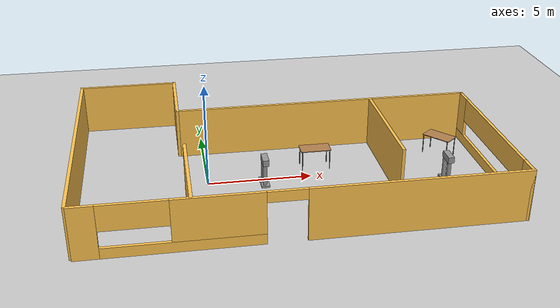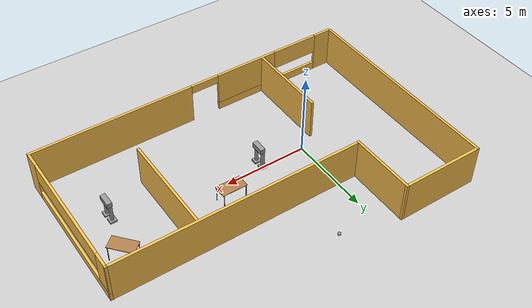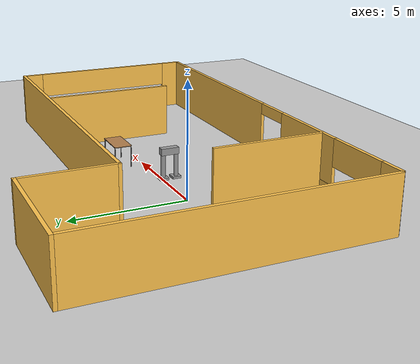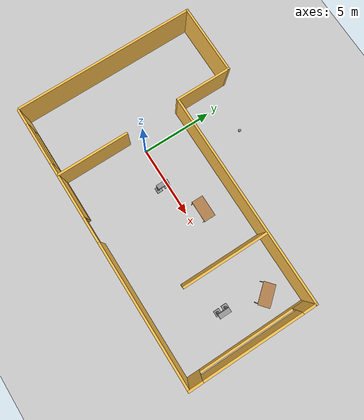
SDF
<sdf version="1.6">
 <world name="default">
  <plugin name="welcome_message" filename="libwelcome_message.so"/>
  <light name="sun" type="directional">
   <pose>0 0 10 0 -0 0</pose>
   <diffuse>0.8 0.8 0.8 1</diffuse>
   <specular>0.2 0.2 0.2 1</specular>
   <attenuation>
    <range>1000</range>
    <constant>0.9</constant>
    <linear>0.01</linear>
    <quadratic>0.001</quadratic>
   </attenuation>
   <direction>-0.5 0.1 -0.9</direction>
  </light>
  <model name="ground_plane">
   <static>1</static>
   <link name="link">
    <collision name="collision">
     <geometry><plane><normal>0 0 1</normal><size>100 100</size></plane></geometry>
     <surface>
      <contact><collide_bitmask>65535</collide_bitmask></contact>
      <friction><ode><mu>100</mu><mu2>50</mu2></ode></friction>
     </surface>
    </collision>
    <visual name="visual">
     <cast_shadows>0</cast_shadows>
     <geometry><plane><normal>0 0 1</normal><size>100 100</size></plane></geometry>
     <material>
      <script><uri>file://media/materials/scripts/gazebo.material</uri><name>Gazebo/Grey</name></script>
     </material>
    </visual>
   </link>
  </model>
  <gravity>0 0 -9.81</gravity>
  <magnetic_field>6e-06 2.3e-05 -4.2e-05</magnetic_field>
  <atmosphere type="adiabatic"/>
  <physics name="default_physics" default="0" type="ode">
   <max_step_size>0.001</max_step_size>
   <real_time_factor>1</real_time_factor>
   <real_time_update_rate>1000</real_time_update_rate>
  </physics>
  <scene><ambient>0.4 0.4 0.4 1</ambient><background>0.7 0.7 0.7 1</background><shadows>1</shadows></scene>
  <audio><device>default</device></audio>
  <spherical_coordinates>
   <surface_model>EARTH_WGS84</surface_model>
   <latitude_deg>0</latitude_deg>
   <longitude_deg>0</longitude_deg>
   <elevation>0</elevation>
   <heading_deg>0</heading_deg>
  </spherical_coordinates>
  <model name="table">
   <static>1</static>
   <link name="link">
    <collision name="surface">
     <pose>0 0 1 0 -0 0</pose>
     <geometry><box><size>1.5 0.8 0.03</size></box></geometry>
     <surface><friction><ode><mu>0.6</mu><mu2>0.6</mu2></ode></friction></surface>
    </collision>
    <visual name="visual1">
     <pose>0 0 1 0 -0 0</pose>
     <geometry><box><size>1.5 0.8 0.03</size></box></geometry>
     <material>
      <script><uri>file://media/materials/scripts/gazebo.material</uri><name>Gazebo/Wood</name></script>
     </material>
    </visual>
    <collision name="front_left_leg">
     <pose>0.68 0.38 0.5 0 -0 0</pose>
     <geometry><cylinder><radius>0.02</radius><length>1</length></cylinder></geometry>
    </collision>
    <visual name="front_left_leg">
     <pose>0.68 0.38 0.5 0 -0 0</pose>
     <geometry><cylinder><radius>0.02</radius><length>1</length></cylinder></geometry>
     <material>
      <script><uri>file://media/materials/scripts/gazebo.material</uri><name>Gazebo/Grey</name></script>
     </material>
    </visual>
    <collision name="front_right_leg">
     <pose>0.68 -0.38 0.5 0 -0 0</pose>
     <geometry><cylinder><radius>0.02</radius><length>1</length></cylinder></geometry>
    </collision>
    <visual name="front_right_leg">
     <pose>0.68 -0.38 0.5 0 -0 0</pose>
     <geometry><cylinder><radius>0.02</radius><length>1</length></cylinder></geometry>
     <material>
      <script><uri>file://media/materials/scripts/gazebo.material</uri><name>Gazebo/Grey</name></script>
     </material>
    </visual>
    <collision name="back_right_leg">
     <pose>-0.68 -0.38 0.5 0 -0 0</pose>
     <geometry><cylinder><radius>0.02</radius><length>1</length></cylinder></geometry>
    </collision>
    <visual name="back_right_leg">
     <pose>-0.68 -0.38 0.5 0 -0 0</pose>
     <geometry><cylinder><radius>0.02</radius><length>1</length></cylinder></geometry>
     <material>
      <script><uri>file://media/materials/scripts/gazebo.material</uri><name>Gazebo/Grey</name></script>
     </material>
    </visual>
    <collision name="back_left_leg">
     <pose>-0.68 0.38 0.5 0 -0 0</pose>
     <geometry><cylinder><radius>0.02</radius><length>1</length></cylinder></geometry>
    </collision>
    <visual name="back_left_leg">
     <pose>-0.68 0.38 0.5 0 -0 0</pose>
     <geometry><cylinder><radius>0.02</radius><length>1</length></cylinder></geometry>
     <material>
      <script><uri>file://media/materials/scripts/gazebo.material</uri><name>Gazebo/Grey</name></script>
     </material>
    </visual>
   </link>
   <pose>5.38497 1.00754 0 0 -0 0</pose>
  </model>
  <model name="table_0">
   <static>1</static>
   <link name="link">
    <collision name="surface">
     <pose>0 0 1 0 -0 0</pose>
     <geometry><box><size>1.5 0.8 0.03</size></box></geometry>
     <surface><friction><ode><mu>0.6</mu><mu2>0.6</mu2></ode></friction></surface>
    </collision>
    <visual name="visual1">
     <pose>0 0 1 0 -0 0</pose>
     <geometry><box><size>1.5 0.8 0.03</size></box></geometry>
     <material>
      <script><uri>file://media/materials/scripts/gazebo.material</uri><name>Gazebo/Wood</name></script>
     </material>
    </visual>
    <collision name="front_left_leg">
     <pose>0.68 0.38 0.5 0 -0 0</pose>
     <geometry><cylinder><radius>0.02</radius><length>1</length></cylinder></geometry>
    </collision>
    <visual name="front_left_leg">
     <pose>0.68 0.38 0.5 0 -0 0</pose>
     <geometry><cylinder><radius>0.02</radius><length>1</length></cylinder></geometry>
     <material>
      <script><uri>file://media/materials/scripts/gazebo.material</uri><name>Gazebo/Grey</name></script>
     </material>
    </visual>
    <collision name="front_right_leg">
     <pose>0.68 -0.38 0.5 0 -0 0</pose>
     <geometry><cylinder><radius>0.02</radius><length>1</length></cylinder></geometry>
    </collision>
    <visual name="front_right_leg">
     <pose>0.68 -0.38 0.5 0 -0 0</pose>
     <geometry><cylinder><radius>0.02</radius><length>1</length></cylinder></geometry>
     <material>
      <script><uri>file://media/materials/scripts/gazebo.material</uri><name>Gazebo/Grey</name></script>
     </material>
    </visual>
    <collision name="back_right_leg">
     <pose>-0.68 -0.38 0.5 0 -0 0</pose>
     <geometry><cylinder><radius>0.02</radius><length>1</length></cylinder></geometry>
    </collision>
    <visual name="back_right_leg">
     <pose>-0.68 -0.38 0.5 0 -0 0</pose>
     <geometry><cylinder><radius>0.02</radius><length>1</length></cylinder></geometry>
     <material>
      <script><uri>file://media/materials/scripts/gazebo.material</uri><name>Gazebo/Grey</name></script>
     </material>
    </visual>
    <collision name="back_left_leg">
     <pose>-0.68 0.38 0.5 0 -0 0</pose>
     <geometry><cylinder><radius>0.02</radius><length>1</length></cylinder></geometry>
    </collision>
    <visual name="back_left_leg">
     <pose>-0.68 0.38 0.5 0 -0 0</pose>
     <geometry><cylinder><radius>0.02</radius><length>1</length></cylinder></geometry>
     <material>
      <script><uri>file://media/materials/scripts/gazebo.material</uri><name>Gazebo/Grey</name></script>
     </material>
    </visual>
   </link>
   <pose>11.9412 1.36034 0 0 -0 2.27837</pose>
  </model>
  <model name="Building">
   <pose>3.79999 0.75368 0 0 -0 0</pose>
   <link name="Wall_0">
    <pose>0.05 -6.35 0 0 -0 0</pose>
    <visual name="Wall_0_Visual_0">
     <pose>-9.30666 0 1.25 0 -0 0</pose>
     <geometry><box><size>1.13668 0.15 2.5</size></box></geometry>
     <material>
      <script><uri>file://media/materials/scripts/gazebo.material</uri><name>Gazebo/Grey</name></script>
      <ambient>1 0.764706 0.305882 1</ambient>
     </material>
     <meta><layer>0</layer></meta>
    </visual>
    <collision name="Wall_0_Collision_0">
     <geometry><box><size>1.13668 0.15 2.5</size></box></geometry>
     <pose>-9.30666 0 1.25 0 -0 0</pose>
    </collision>
    <visual name="Wall_0_Visual_1">
     <pose>4.90959 0 1.25 0 -0 0</pose>
     <geometry><box><size>9.93081 0.15 2.5</size></box></geometry>
     <material>
      <script><uri>file://media/materials/scripts/gazebo.material</uri><name>Gazebo/Grey</name></script>
      <ambient>1 0.764706 0.305882 1</ambient>
     </material>
     <meta><layer>0</layer></meta>
    </visual>
    <collision name="Wall_0_Collision_1">
     <geometry><box><size>9.93081 0.15 2.5</size></box></geometry>
     <pose>4.90959 0 1.25 0 -0 0</pose>
    </collision>
    <visual name="Wall_0_Visual_2">
     <pose>-5.27291 0 0.25 0 -0 0</pose>
     <geometry><box><size>6.93082 0.15 0.5</size></box></geometry>
     <material>
      <script><uri>file://media/materials/scripts/gazebo.material</uri><name>Gazebo/Grey</name></script>
      <ambient>1 0.764706 0.305882 1</ambient>
     </material>
     <meta><layer>0</layer></meta>
    </visual>
    <collision name="Wall_0_Collision_2">
     <geometry><box><size>6.93082 0.15 0.5</size></box></geometry>
     <pose>-5.27291 0 0.25 0 -0 0</pose>
    </collision>
    <visual name="Wall_0_Visual_3">
     <pose>-3.79309 0 1.5 0 -0 0</pose>
     <geometry><box><size>3.97117 0.15 2</size></box></geometry>
     <material>
      <script><uri>file://media/materials/scripts/gazebo.material</uri><name>Gazebo/Grey</name></script>
      <ambient>1 0.764706 0.305882 1</ambient>
     </material>
     <meta><layer>0</layer></meta>
    </visual>
    <collision name="Wall_0_Collision_3">
     <geometry><box><size>3.97117 0.15 2</size></box></geometry>
     <pose>-3.79309 0 1.5 0 -0 0</pose>
    </collision>
    <visual name="Wall_0_Visual_4">
     <pose>-7.2585 0 1.9 0 -0 0</pose>
     <geometry><box><size>2.95964 0.15 1.2</size></box></geometry>
     <material>
      <script><uri>file://media/materials/scripts/gazebo.material</uri><name>Gazebo/Grey</name></script>
      <ambient>1 0.764706 0.305882 1</ambient>
     </material>
     <meta><layer>0</layer></meta>
    </visual>
    <collision name="Wall_0_Collision_4">
     <geometry><box><size>2.95964 0.15 1.2</size></box></geometry>
     <pose>-7.2585 0 1.9 0 -0 0</pose>
    </collision>
    <visual name="Wall_0_Visual_5">
     <pose>-0.931658 0 2.25 0 -0 0</pose>
     <geometry><box><size>1.75169 0.15 0.5</size></box></geometry>
     <material>
      <script><uri>file://media/materials/scripts/gazebo.material</uri><name>Gazebo/Grey</name></script>
      <ambient>1 0.764706 0.305882 1</ambient>
     </material>
     <meta><layer>0</layer></meta>
    </visual>
    <collision name="Wall_0_Collision_5">
     <geometry><box><size>1.75169 0.15 0.5</size></box></geometry>
     <pose>-0.931658 0 2.25 0 -0 0</pose>
    </collision>
   </link>
   <link name="Wall_1">
    <pose>9.85 -1.925 0 0 -0 1.5708</pose>
    <visual name="Wall_1_Visual_0">
     <pose>-3.98341 0 1.25 0 -0 0</pose>
     <geometry><box><size>1.03318 0.15 2.5</size></box></geometry>
     <material>
      <script><uri>file://media/materials/scripts/gazebo.material</uri><name>Gazebo/Grey</name></script>
      <ambient>1 0.764706 0.305882 1</ambient>
     </material>
     <meta><layer>0</layer></meta>
    </visual>
    <collision name="Wall_1_Collision_0">
     <geometry><box><size>1.03318 0.15 2.5</size></box></geometry>
     <pose>-3.98341 0 1.25 0 -0 0</pose>
    </collision>
    <visual name="Wall_1_Visual_1">
     <pose>0.516591 0 0.25 0 -0 0</pose>
     <geometry><box><size>7.96682 0.15 0.5</size></box></geometry>
     <material>
      <script><uri>file://media/materials/scripts/gazebo.material</uri><name>Gazebo/Grey</name></script>
      <ambient>1 0.764706 0.305882 1</ambient>
     </material>
     <meta><layer>0</layer></meta>
    </visual>
    <collision name="Wall_1_Collision_1">
     <geometry><box><size>7.96682 0.15 0.5</size></box></geometry>
     <pose>0.516591 0 0.25 0 -0 0</pose>
    </collision>
    <visual name="Wall_1_Visual_2">
     <pose>3.98876 0 1.5 0 -0 0</pose>
     <geometry><box><size>1.02248 0.15 2</size></box></geometry>
     <material>
      <script><uri>file://media/materials/scripts/gazebo.material</uri><name>Gazebo/Grey</name></script>
      <ambient>1 0.764706 0.305882 1</ambient>
     </material>
     <meta><layer>0</layer></meta>
    </visual>
    <collision name="Wall_1_Collision_2">
     <geometry><box><size>1.02248 0.15 2</size></box></geometry>
     <pose>3.98876 0 1.5 0 -0 0</pose>
    </collision>
    <visual name="Wall_1_Visual_3">
     <pose>0.00535 0 1.9 0 -0 0</pose>
     <geometry><box><size>6.94433 0.15 1.2</size></box></geometry>
     <material>
      <script><uri>file://media/materials/scripts/gazebo.material</uri><name>Gazebo/Grey</name></script>
      <ambient>1 0.764706 0.305882 1</ambient>
     </material>
     <meta><layer>0</layer></meta>
    </visual>
    <collision name="Wall_1_Collision_3">
     <geometry><box><size>6.94433 0.15 1.2</size></box></geometry>
     <pose>0.00535 0 1.9 0 -0 0</pose>
    </collision>
   </link>
   <link name="Wall_2">
    <collision name="Wall_2_Collision">
     <geometry><box><size>15 0.15 2.5</size></box></geometry>
     <pose>0 0 1.25 0 -0 0</pose>
    </collision>
    <visual name="Wall_2_Visual">
     <pose>0 0 1.25 0 -0 0</pose>
     <geometry><box><size>15 0.15 2.5</size></box></geometry>
     <material>
      <script><uri>file://media/materials/scripts/gazebo.material</uri><name>Gazebo/Grey</name></script>
      <ambient>1 0.764706 0.305882 1</ambient>
     </material>
     <meta><layer>0</layer></meta>
    </visual>
    <pose>2.425 2.5 0 0 -0 3.14159</pose>
   </link>
   <link name="Wall_3">
    <collision name="Wall_3_Collision">
     <geometry><box><size>4 0.15 2.5</size></box></geometry>
     <pose>0 0 1.25 0 -0 0</pose>
    </collision>
    <visual name="Wall_3_Visual">
     <pose>0 0 1.25 0 -0 0</pose>
     <geometry><box><size>4 0.15 2.5</size></box></geometry>
     <material>
      <script><uri>file://media/materials/scripts/gazebo.material</uri><name>Gazebo/Grey</name></script>
      <ambient>1 0.764706 0.305882 1</ambient>
     </material>
     <meta><layer>0</layer></meta>
    </visual>
    <pose>-5 4.425 0 0 -0 1.5708</pose>
   </link>
   <link name="Wall_4">
    <collision name="Wall_4_Collision">
     <geometry><box><size>5 0.15 2.5</size></box></geometry>
     <pose>0 0 1.25 0 -0 0</pose>
    </collision>
    <visual name="Wall_4_Visual">
     <pose>0 0 1.25 0 -0 0</pose>
     <geometry><box><size>5 0.15 2.5</size></box></geometry>
     <material>
      <script><uri>file://media/materials/scripts/gazebo.material</uri><name>Gazebo/Grey</name></script>
      <ambient>1 0.764706 0.305882 1</ambient>
     </material>
     <meta><layer>0</layer></meta>
    </visual>
    <pose>-7.425 6.35 0 0 -0 3.14159</pose>
   </link>
   <link name="Wall_5">
    <collision name="Wall_5_Collision">
     <geometry><box><size>12.75 0.15 2.5</size></box></geometry>
     <pose>0 0 1.25 0 -0 0</pose>
    </collision>
    <visual name="Wall_5_Visual">
     <pose>0 0 1.25 0 -0 0</pose>
     <geometry><box><size>12.75 0.15 2.5</size></box></geometry>
     <material>
      <script><uri>file://media/materials/scripts/gazebo.material</uri><name>Gazebo/Grey</name></script>
      <ambient>1 0.764706 0.305882 1</ambient>
     </material>
     <meta><layer>0</layer></meta>
    </visual>
    <pose>-9.85 0.05 0 0 -0 -1.5708</pose>
   </link>
   <link name="Wall_7">
    <collision name="Wall_7_Collision">
     <geometry><box><size>5 0.15 2.5</size></box></geometry>
     <pose>0 0 1.25 0 -0 0</pose>
    </collision>
    <visual name="Wall_7_Visual">
     <pose>0 0 1.25 0 -0 0</pose>
     <geometry><box><size>5 0.15 2.5</size></box></geometry>
     <material>
      <script><uri>file://media/materials/scripts/gazebo.material</uri><name>Gazebo/Grey</name></script>
      <ambient>1 0.764706 0.305882 1</ambient>
     </material>
     <meta><layer>0</layer></meta>
    </visual>
    <pose>-4.85114 -3.84435 0 0 -0 1.5708</pose>
   </link>
   <link name="Wall_9">
    <collision name="Wall_9_Collision">
     <geometry><box><size>6 0.15 2.5</size></box></geometry>
     <pose>0 0 1.25 0 -0 0</pose>
    </collision>
    <visual name="Wall_9_Visual">
     <pose>0 0 1.25 0 -0 0</pose>
     <geometry><box><size>6 0.15 2.5</size></box></geometry>
     <material>
      <script><uri>file://media/materials/scripts/gazebo.material</uri><name>Gazebo/Grey</name></script>
      <ambient>1 0.764706 0.305882 1</ambient>
     </material>
     <meta><layer>0</layer></meta>
    </visual>
    <pose>4.91288 -0.555783 0 0 -0 -1.5708</pose>
   </link>
   <static>1</static>
  </model>
  <model name="HumanoidRobot">
   <link name="link_0">
    <inertial>
     <mass>1</mass>
     <inertia>
      <ixx>0.166667</ixx>
      <ixy>0</ixy>
      <ixz>0</ixz>
      <iyy>0.166667</iyy>
      <iyz>0</iyz>
      <izz>0.166667</izz>
     </inertia>
    </inertial>
    <pose>0.036003 -0.003999 0.74 0 -0 0</pose>
    <visual name="visual">
     <geometry><box><size>0.3 0.8 0.3</size></box></geometry>
     <material>
      <lighting>1</lighting>
      <script><uri>file://media/materials/scripts/gazebo.material</uri><name>Gazebo/Grey</name></script>
      <shader type="vertex"><normal_map>__default__</normal_map></shader>
      <ambient>0.3 0.3 0.3 1</ambient>
      <diffuse>0.7 0.7 0.7 1</diffuse>
      <specular>0.01 0.01 0.01 1</specular>
      <emissive>0 0 0 1</emissive>
     </material>
    </visual>
    <collision name="collision">
     <geometry><box><size>0.3 0.8 0.3</size></box></geometry>
     <surface>
      <friction>
       <ode><mu>1</mu><mu2>1</mu2><fdir1>0 0 0</fdir1><slip1>0</slip1><slip2>0</slip2></ode>
       <torsional>
        <coefficient>1</coefficient>
        <patch_radius>0</patch_radius>
        <surface_radius>0</surface_radius>
        <use_patch_radius>1</use_patch_radius>
        <ode><slip>0</slip></ode>
       </torsional>
      </friction>
      <bounce><restitution_coefficient>0</restitution_coefficient><threshold>1e+06</threshold></bounce>
      <contact>
       <collide_without_contact>0</collide_without_contact>
       <collide_without_contact_bitmask>1</collide_without_contact_bitmask>
       <collide_bitmask>1</collide_bitmask>
       <ode>
        <soft_cfm>0</soft_cfm>
        <soft_erp>0.2</soft_erp>
        <kp>1e+13</kp>
        <kd>1</kd>
        <max_vel>0.01</max_vel>
        <min_depth>0</min_depth>
       </ode>
       <bullet>
        <split_impulse>1</split_impulse>
        <split_impulse_penetration_threshold>-0.01</split_impulse_penetration_threshold>
        <soft_cfm>0</soft_cfm>
        <soft_erp>0.2</soft_erp>
        <kp>1e+13</kp>
        <kd>1</kd>
       </bullet>
      </contact>
     </surface>
    </collision>
   </link>
   <link name="link_1_clone">
    <inertial>
     <mass>1</mass>
     <inertia>
      <ixx>0.166667</ixx>
      <ixy>0</ixy>
      <ixz>0</ixz>
      <iyy>0.166667</iyy>
      <iyz>0</iyz>
      <izz>0.166667</izz>
     </inertia>
    </inertial>
    <pose>0.006003 -0.283999 -0.46 0 -0 0</pose>
    <visual name="visual">
     <geometry><box><size>0.4 0.4 0.1</size></box></geometry>
     <material>
      <lighting>1</lighting>
      <script><uri>file://media/materials/scripts/gazebo.material</uri><name>Gazebo/Grey</name></script>
      <shader type="vertex"><normal_map>__default__</normal_map></shader>
      <ambient>0.3 0.3 0.3 1</ambient>
      <diffuse>0.7 0.7 0.7 1</diffuse>
      <specular>0.01 0.01 0.01 1</specular>
      <emissive>0 0 0 1</emissive>
     </material>
    </visual>
    <collision name="collision">
     <geometry><box><size>0.4 0.4 0.1</size></box></geometry>
     <surface>
      <friction>
       <ode><mu>1</mu><mu2>1</mu2><fdir1>0 0 0</fdir1><slip1>0</slip1><slip2>0</slip2></ode>
       <torsional>
        <coefficient>1</coefficient>
        <patch_radius>0</patch_radius>
        <surface_radius>0</surface_radius>
        <use_patch_radius>1</use_patch_radius>
        <ode><slip>0</slip></ode>
       </torsional>
      </friction>
      <bounce><restitution_coefficient>0</restitution_coefficient><threshold>1e+06</threshold></bounce>
      <contact>
       <collide_without_contact>0</collide_without_contact>
       <collide_without_contact_bitmask>1</collide_without_contact_bitmask>
       <collide_bitmask>1</collide_bitmask>
       <ode>
        <soft_cfm>0</soft_cfm>
        <soft_erp>0.2</soft_erp>
        <kp>1e+13</kp>
        <kd>1</kd>
        <max_vel>0.01</max_vel>
        <min_depth>0</min_depth>
       </ode>
       <bullet>
        <split_impulse>1</split_impulse>
        <split_impulse_penetration_threshold>-0.01</split_impulse_penetration_threshold>
        <soft_cfm>0</soft_cfm>
        <soft_erp>0.2</soft_erp>
        <kp>1e+13</kp>
        <kd>1</kd>
       </bullet>
      </contact>
     </surface>
    </collision>
   </link>
   <link name="link_1_clone_clone">
    <inertial>
     <mass>1</mass>
     <inertia>
      <ixx>0.166667</ixx>
      <ixy>0</ixy>
      <ixz>0</ixz>
      <iyy>0.166667</iyy>
      <iyz>0</iyz>
      <izz>0.166667</izz>
     </inertia>
    </inertial>
    <pose>-0.013997 0.296001 -0.46 0 -0 0</pose>
    <visual name="visual">
     <geometry><box><size>0.4 0.4 0.1</size></box></geometry>
     <material>
      <lighting>1</lighting>
      <script><uri>file://media/materials/scripts/gazebo.material</uri><name>Gazebo/Grey</name></script>
      <shader type="vertex"><normal_map>__default__</normal_map></shader>
      <ambient>0.3 0.3 0.3 1</ambient>
      <diffuse>0.7 0.7 0.7 1</diffuse>
      <specular>0.01 0.01 0.01 1</specular>
      <emissive>0 0 0 1</emissive>
     </material>
    </visual>
    <collision name="collision">
     <geometry><box><size>0.4 0.4 0.1</size></box></geometry>
     <surface>
      <friction>
       <ode><mu>1</mu><mu2>1</mu2><fdir1>0 0 0</fdir1><slip1>0</slip1><slip2>0</slip2></ode>
       <torsional>
        <coefficient>1</coefficient>
        <patch_radius>0</patch_radius>
        <surface_radius>0</surface_radius>
        <use_patch_radius>1</use_patch_radius>
        <ode><slip>0</slip></ode>
       </torsional>
      </friction>
      <bounce><restitution_coefficient>0</restitution_coefficient><threshold>1e+06</threshold></bounce>
      <contact>
       <collide_without_contact>0</collide_without_contact>
       <collide_without_contact_bitmask>1</collide_without_contact_bitmask>
       <collide_bitmask>1</collide_bitmask>
       <ode>
        <soft_cfm>0</soft_cfm>
        <soft_erp>0.2</soft_erp>
        <kp>1e+13</kp>
        <kd>1</kd>
        <max_vel>0.01</max_vel>
        <min_depth>0</min_depth>
       </ode>
       <bullet>
        <split_impulse>1</split_impulse>
        <split_impulse_penetration_threshold>-0.01</split_impulse_penetration_threshold>
        <soft_cfm>0</soft_cfm>
        <soft_erp>0.2</soft_erp>
        <kp>1e+13</kp>
        <kd>1</kd>
       </bullet>
      </contact>
     </surface>
    </collision>
   </link>
   <link name="link_2">
    <inertial>
     <mass>1</mass>
     <inertia><ixx>0.145833</ixx><ixy>0</ixy><ixz>0</ixz><iyy>0.145833</iyy><iyz>0</iyz><izz>0.125</izz></inertia>
    </inertial>
    <pose>-0.013997 -0.303999 0.09 0 -0 0</pose>
    <visual name="visual">
     <geometry><cylinder><radius>0.1</radius><length>1</length></cylinder></geometry>
     <material>
      <lighting>1</lighting>
      <script><uri>file://media/materials/scripts/gazebo.material</uri><name>Gazebo/Grey</name></script>
      <shader type="vertex"><normal_map>__default__</normal_map></shader>
      <ambient>0.3 0.3 0.3 1</ambient>
      <diffuse>0.7 0.7 0.7 1</diffuse>
      <specular>0.01 0.01 0.01 1</specular>
      <emissive>0 0 0 1</emissive>
     </material>
    </visual>
    <collision name="collision">
     <geometry><cylinder><radius>0.1</radius><length>1</length></cylinder></geometry>
     <surface>
      <friction>
       <ode><mu>1</mu><mu2>1</mu2><fdir1>0 0 0</fdir1><slip1>0</slip1><slip2>0</slip2></ode>
       <torsional>
        <coefficient>1</coefficient>
        <patch_radius>0</patch_radius>
        <surface_radius>0</surface_radius>
        <use_patch_radius>1</use_patch_radius>
        <ode><slip>0</slip></ode>
       </torsional>
      </friction>
      <bounce><restitution_coefficient>0</restitution_coefficient><threshold>1e+06</threshold></bounce>
      <contact>
       <collide_without_contact>0</collide_without_contact>
       <collide_without_contact_bitmask>1</collide_without_contact_bitmask>
       <collide_bitmask>1</collide_bitmask>
       <ode>
        <soft_cfm>0</soft_cfm>
        <soft_erp>0.2</soft_erp>
        <kp>1e+13</kp>
        <kd>1</kd>
        <max_vel>0.01</max_vel>
        <min_depth>0</min_depth>
       </ode>
       <bullet>
        <split_impulse>1</split_impulse>
        <split_impulse_penetration_threshold>-0.01</split_impulse_penetration_threshold>
        <soft_cfm>0</soft_cfm>
        <soft_erp>0.2</soft_erp>
        <kp>1e+13</kp>
        <kd>1</kd>
       </bullet>
      </contact>
     </surface>
    </collision>
   </link>
   <link name="link_2_clone">
    <inertial>
     <mass>1</mass>
     <inertia><ixx>0.145833</ixx><ixy>0</ixy><ixz>0</ixz><iyy>0.145833</iyy><iyz>0</iyz><izz>0.125</izz></inertia>
    </inertial>
    <pose>-0.013997 0.296001 0.09 0 -0 0</pose>
    <visual name="visual">
     <geometry><cylinder><radius>0.1</radius><length>1</length></cylinder></geometry>
     <material>
      <lighting>1</lighting>
      <script><uri>file://media/materials/scripts/gazebo.material</uri><name>Gazebo/Grey</name></script>
      <shader type="vertex"><normal_map>__default__</normal_map></shader>
      <ambient>0.3 0.3 0.3 1</ambient>
      <diffuse>0.7 0.7 0.7 1</diffuse>
      <specular>0.01 0.01 0.01 1</specular>
      <emissive>0 0 0 1</emissive>
     </material>
    </visual>
    <collision name="collision">
     <geometry><cylinder><radius>0.1</radius><length>1</length></cylinder></geometry>
     <surface>
      <friction>
       <ode><mu>1</mu><mu2>1</mu2><fdir1>0 0 0</fdir1><slip1>0</slip1><slip2>0</slip2></ode>
       <torsional>
        <coefficient>1</coefficient>
        <patch_radius>0</patch_radius>
        <surface_radius>0</surface_radius>
        <use_patch_radius>1</use_patch_radius>
        <ode><slip>0</slip></ode>
       </torsional>
      </friction>
      <bounce><restitution_coefficient>0</restitution_coefficient><threshold>1e+06</threshold></bounce>
      <contact>
       <collide_without_contact>0</collide_without_contact>
       <collide_without_contact_bitmask>1</collide_without_contact_bitmask>
       <collide_bitmask>1</collide_bitmask>
       <ode>
        <soft_cfm>0</soft_cfm>
        <soft_erp>0.2</soft_erp>
        <kp>1e+13</kp>
        <kd>1</kd>
        <max_vel>0.01</max_vel>
        <min_depth>0</min_depth>
       </ode>
       <bullet>
        <split_impulse>1</split_impulse>
        <split_impulse_penetration_threshold>-0.01</split_impulse_penetration_threshold>
        <soft_cfm>0</soft_cfm>
        <soft_erp>0.2</soft_erp>
        <kp>1e+13</kp>
        <kd>1</kd>
       </bullet>
      </contact>
     </surface>
    </collision>
   </link>
   <joint name="link_0_JOINT_0" type="fixed">
    <parent>link_0</parent>
    <child>link_2</child>
    <axis>
     <xyz>0 1 0</xyz>
     <use_parent_model_frame>0</use_parent_model_frame>
     <limit>
      <lower>-1.79769e+308</lower>
      <upper>1.79769e+308</upper>
      <effort>-1</effort>
      <velocity>-1</velocity>
     </limit>
     <dynamics>
      <spring_reference>0</spring_reference>
      <spring_stiffness>0</spring_stiffness>
      <damping>0</damping>
     </dynamics>
    </axis>
    <physics>
     <ode><limit><cfm>0</cfm><erp>0.2</erp></limit><suspension><cfm>0</cfm><erp>0.2</erp></suspension></ode>
    </physics>
   </joint>
   <joint name="link_0_JOINT_1" type="fixed">
    <parent>link_0</parent>
    <child>link_2_clone</child>
    <axis>
     <xyz>0 1 0</xyz>
     <use_parent_model_frame>0</use_parent_model_frame>
     <limit>
      <lower>-1.79769e+308</lower>
      <upper>1.79769e+308</upper>
      <effort>-1</effort>
      <velocity>-1</velocity>
     </limit>
     <dynamics>
      <spring_reference>0</spring_reference>
      <spring_stiffness>0</spring_stiffness>
      <damping>0</damping>
     </dynamics>
    </axis>
    <physics>
     <ode><limit><cfm>0</cfm><erp>0.2</erp></limit><suspension><cfm>0</cfm><erp>0.2</erp></suspension></ode>
    </physics>
   </joint>
   <joint name="link_2_JOINT_2" type="fixed">
    <parent>link_2</parent>
    <child>link_1_clone</child>
    <axis>
     <xyz>0 1 0</xyz>
     <use_parent_model_frame>0</use_parent_model_frame>
     <limit>
      <lower>-1.79769e+308</lower>
      <upper>1.79769e+308</upper>
      <effort>-1</effort>
      <velocity>-1</velocity>
     </limit>
     <dynamics>
      <spring_reference>0</spring_reference>
      <spring_stiffness>0</spring_stiffness>
      <damping>0</damping>
     </dynamics>
    </axis>
    <physics>
     <ode><limit><cfm>0</cfm><erp>0.2</erp></limit><suspension><cfm>0</cfm><erp>0.2</erp></suspension></ode>
    </physics>
   </joint>
   <joint name="link_2_clone_JOINT_3" type="fixed">
    <parent>link_2_clone</parent>
    <child>link_1_clone_clone</child>
    <axis>
     <xyz>0 1 0</xyz>
     <use_parent_model_frame>0</use_parent_model_frame>
     <limit>
      <lower>-1.79769e+308</lower>
      <upper>1.79769e+308</upper>
      <effort>-1</effort>
      <velocity>-1</velocity>
     </limit>
     <dynamics>
      <spring_reference>0</spring_reference>
      <spring_stiffness>0</spring_stiffness>
      <damping>0</damping>
     </dynamics>
    </axis>
    <physics>
     <ode><limit><cfm>0</cfm><erp>0.2</erp></limit><suspension><cfm>0</cfm><erp>0.2</erp></suspension></ode>
    </physics>
   </joint>
   <static>0</static>
   <pose>2.66351 -0.368005 0.51 1e-06 1e-06 9.7e-05</pose>
  </model>
  <model name="HumanoidRobot_clone">
   <link name="link_0">
    <inertial>
     <mass>1</mass>
     <inertia>
      <ixx>0.166667</ixx>
      <ixy>0</ixy>
      <ixz>0</ixz>
      <iyy>0.166667</iyy>
      <iyz>0</iyz>
      <izz>0.166667</izz>
     </inertia>
    </inertial>
    <pose>0.036003 -0.003999 0.74 0 -0 0</pose>
    <visual name="visual">
     <geometry><box><size>0.3 0.8 0.3</size></box></geometry>
     <material>
      <lighting>1</lighting>
      <script><uri>file://media/materials/scripts/gazebo.material</uri><name>Gazebo/Grey</name></script>
      <shader type="vertex"><normal_map>__default__</normal_map></shader>
      <ambient>0.3 0.3 0.3 1</ambient>
      <diffuse>0.7 0.7 0.7 1</diffuse>
      <specular>0.01 0.01 0.01 1</specular>
      <emissive>0 0 0 1</emissive>
     </material>
    </visual>
    <collision name="collision">
     <geometry><box><size>0.3 0.8 0.3</size></box></geometry>
     <surface>
      <friction>
       <ode><mu>1</mu><mu2>1</mu2><fdir1>0 0 0</fdir1><slip1>0</slip1><slip2>0</slip2></ode>
       <torsional>
        <coefficient>1</coefficient>
        <patch_radius>0</patch_radius>
        <surface_radius>0</surface_radius>
        <use_patch_radius>1</use_patch_radius>
        <ode><slip>0</slip></ode>
       </torsional>
      </friction>
      <bounce><restitution_coefficient>0</restitution_coefficient><threshold>1e+06</threshold></bounce>
      <contact>
       <collide_without_contact>0</collide_without_contact>
       <collide_without_contact_bitmask>1</collide_without_contact_bitmask>
       <collide_bitmask>1</collide_bitmask>
       <ode>
        <soft_cfm>0</soft_cfm>
        <soft_erp>0.2</soft_erp>
        <kp>1e+13</kp>
        <kd>1</kd>
        <max_vel>0.01</max_vel>
        <min_depth>0</min_depth>
       </ode>
       <bullet>
        <split_impulse>1</split_impulse>
        <split_impulse_penetration_threshold>-0.01</split_impulse_penetration_threshold>
        <soft_cfm>0</soft_cfm>
        <soft_erp>0.2</soft_erp>
        <kp>1e+13</kp>
        <kd>1</kd>
       </bullet>
      </contact>
     </surface>
    </collision>
   </link>
   <link name="link_1_clone">
    <inertial>
     <mass>1</mass>
     <inertia>
      <ixx>0.166667</ixx>
      <ixy>0</ixy>
      <ixz>0</ixz>
      <iyy>0.166667</iyy>
      <iyz>0</iyz>
      <izz>0.166667</izz>
     </inertia>
    </inertial>
    <pose>0.006003 -0.283999 -0.46 0 -0 0</pose>
    <visual name="visual">
     <geometry><box><size>0.4 0.4 0.1</size></box></geometry>
     <material>
      <lighting>1</lighting>
      <script><uri>file://media/materials/scripts/gazebo.material</uri><name>Gazebo/Grey</name></script>
      <shader type="vertex"><normal_map>__default__</normal_map></shader>
      <ambient>0.3 0.3 0.3 1</ambient>
      <diffuse>0.7 0.7 0.7 1</diffuse>
      <specular>0.01 0.01 0.01 1</specular>
      <emissive>0 0 0 1</emissive>
     </material>
    </visual>
    <collision name="collision">
     <geometry><box><size>0.4 0.4 0.1</size></box></geometry>
     <surface>
      <friction>
       <ode><mu>1</mu><mu2>1</mu2><fdir1>0 0 0</fdir1><slip1>0</slip1><slip2>0</slip2></ode>
       <torsional>
        <coefficient>1</coefficient>
        <patch_radius>0</patch_radius>
        <surface_radius>0</surface_radius>
        <use_patch_radius>1</use_patch_radius>
        <ode><slip>0</slip></ode>
       </torsional>
      </friction>
      <bounce><restitution_coefficient>0</restitution_coefficient><threshold>1e+06</threshold></bounce>
      <contact>
       <collide_without_contact>0</collide_without_contact>
       <collide_without_contact_bitmask>1</collide_without_contact_bitmask>
       <collide_bitmask>1</collide_bitmask>
       <ode>
        <soft_cfm>0</soft_cfm>
        <soft_erp>0.2</soft_erp>
        <kp>1e+13</kp>
        <kd>1</kd>
        <max_vel>0.01</max_vel>
        <min_depth>0</min_depth>
       </ode>
       <bullet>
        <split_impulse>1</split_impulse>
        <split_impulse_penetration_threshold>-0.01</split_impulse_penetration_threshold>
        <soft_cfm>0</soft_cfm>
        <soft_erp>0.2</soft_erp>
        <kp>1e+13</kp>
        <kd>1</kd>
       </bullet>
      </contact>
     </surface>
    </collision>
   </link>
   <link name="link_1_clone_clone">
    <inertial>
     <mass>1</mass>
     <inertia>
      <ixx>0.166667</ixx>
      <ixy>0</ixy>
      <ixz>0</ixz>
      <iyy>0.166667</iyy>
      <iyz>0</iyz>
      <izz>0.166667</izz>
     </inertia>
    </inertial>
    <pose>-0.013997 0.296001 -0.46 0 -0 0</pose>
    <visual name="visual">
     <geometry><box><size>0.4 0.4 0.1</size></box></geometry>
     <material>
      <lighting>1</lighting>
      <script><uri>file://media/materials/scripts/gazebo.material</uri><name>Gazebo/Grey</name></script>
      <shader type="vertex"><normal_map>__default__</normal_map></shader>
      <ambient>0.3 0.3 0.3 1</ambient>
      <diffuse>0.7 0.7 0.7 1</diffuse>
      <specular>0.01 0.01 0.01 1</specular>
      <emissive>0 0 0 1</emissive>
     </material>
    </visual>
    <collision name="collision">
     <geometry><box><size>0.4 0.4 0.1</size></box></geometry>
     <surface>
      <friction>
       <ode><mu>1</mu><mu2>1</mu2><fdir1>0 0 0</fdir1><slip1>0</slip1><slip2>0</slip2></ode>
       <torsional>
        <coefficient>1</coefficient>
        <patch_radius>0</patch_radius>
        <surface_radius>0</surface_radius>
        <use_patch_radius>1</use_patch_radius>
        <ode><slip>0</slip></ode>
       </torsional>
      </friction>
      <bounce><restitution_coefficient>0</restitution_coefficient><threshold>1e+06</threshold></bounce>
      <contact>
       <collide_without_contact>0</collide_without_contact>
       <collide_without_contact_bitmask>1</collide_without_contact_bitmask>
       <collide_bitmask>1</collide_bitmask>
       <ode>
        <soft_cfm>0</soft_cfm>
        <soft_erp>0.2</soft_erp>
        <kp>1e+13</kp>
        <kd>1</kd>
        <max_vel>0.01</max_vel>
        <min_depth>0</min_depth>
       </ode>
       <bullet>
        <split_impulse>1</split_impulse>
        <split_impulse_penetration_threshold>-0.01</split_impulse_penetration_threshold>
        <soft_cfm>0</soft_cfm>
        <soft_erp>0.2</soft_erp>
        <kp>1e+13</kp>
        <kd>1</kd>
       </bullet>
      </contact>
     </surface>
    </collision>
   </link>
   <link name="link_2">
    <inertial>
     <mass>1</mass>
     <inertia><ixx>0.145833</ixx><ixy>0</ixy><ixz>0</ixz><iyy>0.145833</iyy><iyz>0</iyz><izz>0.125</izz></inertia>
    </inertial>
    <pose>-0.013997 -0.303999 0.09 0 -0 0</pose>
    <visual name="visual">
     <geometry><cylinder><radius>0.1</radius><length>1</length></cylinder></geometry>
     <material>
      <lighting>1</lighting>
      <script><uri>file://media/materials/scripts/gazebo.material</uri><name>Gazebo/Grey</name></script>
      <shader type="vertex"><normal_map>__default__</normal_map></shader>
      <ambient>0.3 0.3 0.3 1</ambient>
      <diffuse>0.7 0.7 0.7 1</diffuse>
      <specular>0.01 0.01 0.01 1</specular>
      <emissive>0 0 0 1</emissive>
     </material>
    </visual>
    <collision name="collision">
     <geometry><cylinder><radius>0.1</radius><length>1</length></cylinder></geometry>
     <surface>
      <friction>
       <ode><mu>1</mu><mu2>1</mu2><fdir1>0 0 0</fdir1><slip1>0</slip1><slip2>0</slip2></ode>
       <torsional>
        <coefficient>1</coefficient>
        <patch_radius>0</patch_radius>
        <surface_radius>0</surface_radius>
        <use_patch_radius>1</use_patch_radius>
        <ode><slip>0</slip></ode>
       </torsional>
      </friction>
      <bounce><restitution_coefficient>0</restitution_coefficient><threshold>1e+06</threshold></bounce>
      <contact>
       <collide_without_contact>0</collide_without_contact>
       <collide_without_contact_bitmask>1</collide_without_contact_bitmask>
       <collide_bitmask>1</collide_bitmask>
       <ode>
        <soft_cfm>0</soft_cfm>
        <soft_erp>0.2</soft_erp>
        <kp>1e+13</kp>
        <kd>1</kd>
        <max_vel>0.01</max_vel>
        <min_depth>0</min_depth>
       </ode>
       <bullet>
        <split_impulse>1</split_impulse>
        <split_impulse_penetration_threshold>-0.01</split_impulse_penetration_threshold>
        <soft_cfm>0</soft_cfm>
        <soft_erp>0.2</soft_erp>
        <kp>1e+13</kp>
        <kd>1</kd>
       </bullet>
      </contact>
     </surface>
    </collision>
   </link>
   <link name="link_2_clone">
    <inertial>
     <mass>1</mass>
     <inertia><ixx>0.145833</ixx><ixy>0</ixy><ixz>0</ixz><iyy>0.145833</iyy><iyz>0</iyz><izz>0.125</izz></inertia>
    </inertial>
    <pose>-0.013997 0.296001 0.09 0 -0 0</pose>
    <visual name="visual">
     <geometry><cylinder><radius>0.1</radius><length>1</length></cylinder></geometry>
     <material>
      <lighting>1</lighting>
      <script><uri>file://media/materials/scripts/gazebo.material</uri><name>Gazebo/Grey</name></script>
      <shader type="vertex"><normal_map>__default__</normal_map></shader>
      <ambient>0.3 0.3 0.3 1</ambient>
      <diffuse>0.7 0.7 0.7 1</diffuse>
      <specular>0.01 0.01 0.01 1</specular>
      <emissive>0 0 0 1</emissive>
     </material>
    </visual>
    <collision name="collision">
     <geometry><cylinder><radius>0.1</radius><length>1</length></cylinder></geometry>
     <surface>
      <friction>
       <ode><mu>1</mu><mu2>1</mu2><fdir1>0 0 0</fdir1><slip1>0</slip1><slip2>0</slip2></ode>
       <torsional>
        <coefficient>1</coefficient>
        <patch_radius>0</patch_radius>
        <surface_radius>0</surface_radius>
        <use_patch_radius>1</use_patch_radius>
        <ode><slip>0</slip></ode>
       </torsional>
      </friction>
      <bounce><restitution_coefficient>0</restitution_coefficient><threshold>1e+06</threshold></bounce>
      <contact>
       <collide_without_contact>0</collide_without_contact>
       <collide_without_contact_bitmask>1</collide_without_contact_bitmask>
       <collide_bitmask>1</collide_bitmask>
       <ode>
        <soft_cfm>0</soft_cfm>
        <soft_erp>0.2</soft_erp>
        <kp>1e+13</kp>
        <kd>1</kd>
        <max_vel>0.01</max_vel>
        <min_depth>0</min_depth>
       </ode>
       <bullet>
        <split_impulse>1</split_impulse>
        <split_impulse_penetration_threshold>-0.01</split_impulse_penetration_threshold>
        <soft_cfm>0</soft_cfm>
        <soft_erp>0.2</soft_erp>
        <kp>1e+13</kp>
        <kd>1</kd>
       </bullet>
      </contact>
     </surface>
    </collision>
   </link>
   <joint name="link_0_JOINT_0" type="fixed">
    <parent>link_0</parent>
    <child>link_2</child>
    <axis>
     <xyz>0 1 0</xyz>
     <use_parent_model_frame>0</use_parent_model_frame>
     <limit>
      <lower>-1.79769e+308</lower>
      <upper>1.79769e+308</upper>
      <effort>-1</effort>
      <velocity>-1</velocity>
     </limit>
     <dynamics>
      <spring_reference>0</spring_reference>
      <spring_stiffness>0</spring_stiffness>
      <damping>0</damping>
     </dynamics>
    </axis>
    <physics>
     <ode><limit><cfm>0</cfm><erp>0.2</erp></limit><suspension><cfm>0</cfm><erp>0.2</erp></suspension></ode>
    </physics>
   </joint>
   <joint name="link_0_JOINT_1" type="fixed">
    <parent>link_0</parent>
    <child>link_2_clone</child>
    <axis>
     <xyz>0 1 0</xyz>
     <use_parent_model_frame>0</use_parent_model_frame>
     <limit>
      <lower>-1.79769e+308</lower>
      <upper>1.79769e+308</upper>
      <effort>-1</effort>
      <velocity>-1</velocity>
     </limit>
     <dynamics>
      <spring_reference>0</spring_reference>
      <spring_stiffness>0</spring_stiffness>
      <damping>0</damping>
     </dynamics>
    </axis>
    <physics>
     <ode><limit><cfm>0</cfm><erp>0.2</erp></limit><suspension><cfm>0</cfm><erp>0.2</erp></suspension></ode>
    </physics>
   </joint>
   <joint name="link_2_JOINT_2" type="fixed">
    <parent>link_2</parent>
    <child>link_1_clone</child>
    <axis>
     <xyz>0 1 0</xyz>
     <use_parent_model_frame>0</use_parent_model_frame>
     <limit>
      <lower>-1.79769e+308</lower>
      <upper>1.79769e+308</upper>
      <effort>-1</effort>
      <velocity>-1</velocity>
     </limit>
     <dynamics>
      <spring_reference>0</spring_reference>
      <spring_stiffness>0</spring_stiffness>
      <damping>0</damping>
     </dynamics>
    </axis>
    <physics>
     <ode><limit><cfm>0</cfm><erp>0.2</erp></limit><suspension><cfm>0</cfm><erp>0.2</erp></suspension></ode>
    </physics>
   </joint>
   <joint name="link_2_clone_JOINT_3" type="fixed">
    <parent>link_2_clone</parent>
    <child>link_1_clone_clone</child>
    <axis>
     <xyz>0 1 0</xyz>
     <use_parent_model_frame>0</use_parent_model_frame>
     <limit>
      <lower>-1.79769e+308</lower>
      <upper>1.79769e+308</upper>
      <effort>-1</effort>
      <velocity>-1</velocity>
     </limit>
     <dynamics>
      <spring_reference>0</spring_reference>
      <spring_stiffness>0</spring_stiffness>
      <damping>0</damping>
     </dynamics>
    </axis>
    <physics>
     <ode><limit><cfm>0</cfm><erp>0.2</erp></limit><suspension><cfm>0</cfm><erp>0.2</erp></suspension></ode>
    </physics>
   </joint>
   <static>0</static>
   <pose>11.3592 -1.46925 0.51 1e-06 1e-06 9.7e-05</pose>
  </model>
  <model name="my_ball">
   <link name="link_0">
    <inertial>
     <mass>1</mass>
     <inertia><ixx>0.1</ixx><ixy>0</ixy><ixz>0</ixz><iyy>0.1</iyy><iyz>0</iyz><izz>0.1</izz></inertia>
    </inertial>
    <visual name="visual">
     <geometry><sphere><radius>0.1</radius></sphere></geometry>
     <material>
      <lighting>1</lighting>
      <script><uri>file://media/materials/scripts/gazebo.material</uri><name>Gazebo/Grey</name></script>
      <shader type="vertex"><normal_map>__default__</normal_map></shader>
      <ambient>1 1 1 1</ambient>
      <diffuse>1 1 1 1</diffuse>
      <specular>1 1 1 1</specular>
      <emissive>1 1 1 1</emissive>
     </material>
    </visual>
    <collision name="collision">
     <geometry><sphere><radius>0.1</radius></sphere></geometry>
     <surface>
      <friction>
       <ode><mu>1</mu><mu2>1</mu2><fdir1>0 0 0</fdir1><slip1>0</slip1><slip2>0</slip2></ode>
       <torsional>
        <coefficient>1</coefficient>
        <patch_radius>0</patch_radius>
        <surface_radius>0</surface_radius>
        <use_patch_radius>1</use_patch_radius>
        <ode><slip>0</slip></ode>
       </torsional>
      </friction>
      <bounce><restitution_coefficient>0</restitution_coefficient><threshold>1e+06</threshold></bounce>
      <contact>
       <collide_without_contact>0</collide_without_contact>
       <collide_without_contact_bitmask>1</collide_without_contact_bitmask>
       <collide_bitmask>1</collide_bitmask>
       <ode>
        <soft_cfm>0</soft_cfm>
        <soft_erp>0.2</soft_erp>
        <kp>1e+13</kp>
        <kd>1</kd>
        <max_vel>0.01</max_vel>
        <min_depth>0</min_depth>
       </ode>
       <bullet>
        <split_impulse>1</split_impulse>
        <split_impulse_penetration_threshold>-0.01</split_impulse_penetration_threshold>
        <soft_cfm>0</soft_cfm>
        <soft_erp>0.2</soft_erp>
        <kp>1e+13</kp>
        <kd>1</kd>
       </bullet>
      </contact>
     </surface>
    </collision>
   </link>
   <static>0</static>
   <pose>2.17363 6.17492 0.1 0 -0 0</pose>
  </model>
 </world>
</sdf>
